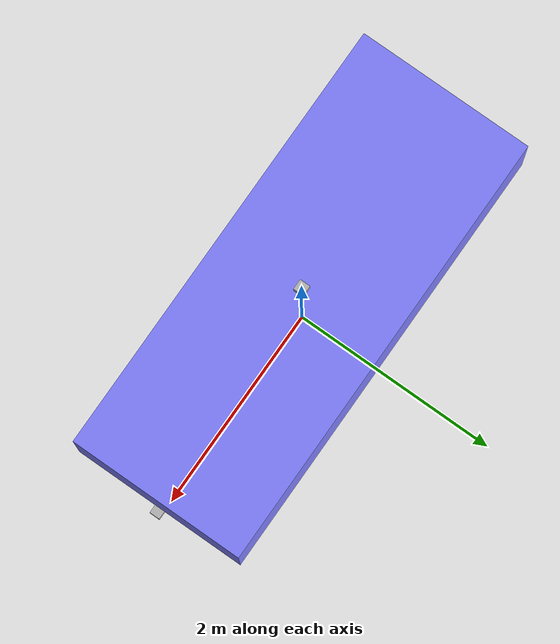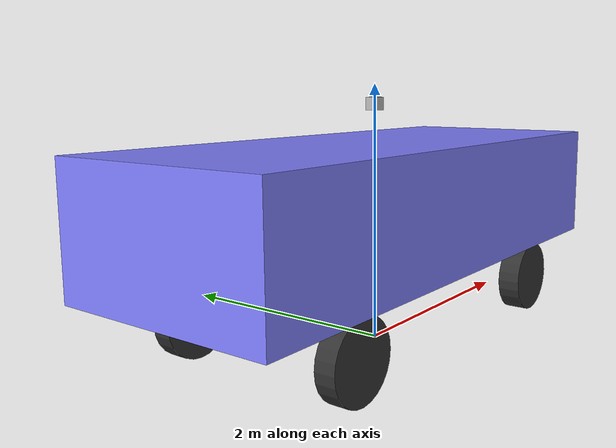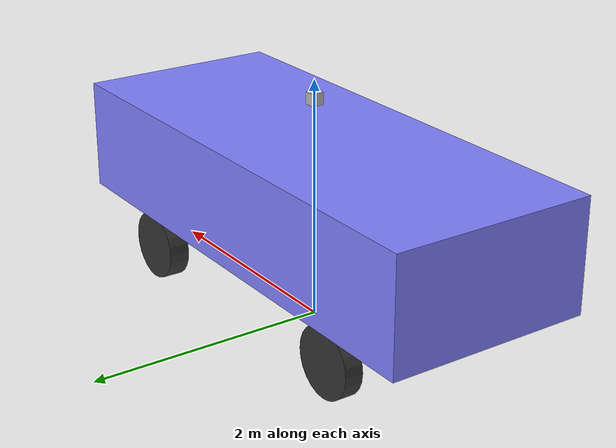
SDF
<?xml version="1.0"?>

<sdf version="1.9">

    <model name='car'>
        <pose>0 0 1.1 0 -0 0</pose>

        <link name='base_footprint'>
            <pose>0 0 0 0 0 0</pose>
        </link>

        <link name='chassis'>
            <pose>0 0 0 0 0 0</pose>
            <inertial>
                <mass>1.14395</mass>
                <inertia>
                    <ixx>0.126164</ixx>
                    <ixy>0</ixy>
                    <ixz>0</ixz>
                    <iyy>0.416519</iyy>
                    <iyz>0</iyz>
                    <izz>0.481014</izz>
                </inertia>
            </inertial>
            <visual name='visual'>
                <geometry>
                    <box>
                        <size> 4.26 1.7 0.93</size>
                    </box>
                </geometry>
                <material>
                    <ambient>0.5 0.5 1.0 1</ambient>
                    <diffuse>0.5 0.5 1.0 1</diffuse>
                    <specular>0.0 0.0 1.0 1</specular>
                </material>
            </visual>
            <collision name='collision'>
                <geometry>
                    <box>
                        <size>4.26 1.7 0.93</size>
                    </box>
                </geometry>
            </collision>
        </link>

        <link name="front_camera_link">
            <pose>2.16 0 -0.5 0 0 0</pose>
            <inertial>
                <mass>0.1</mass>
                <inertia>
                    <ixx>0.000166667</ixx>
                    <iyy>0.000166667</iyy>
                    <izz>0.000166667</izz>
                </inertia>
            </inertial>
            <collision name="collision">
                <geometry>
                    <box>
                        <size>0.1 0.1 0.1</size>
                    </box>
                </geometry>
            </collision>
            <visual name="visual">
                <geometry>
                    <box>
                        <size>0.1 0.1 0.1</size>
                    </box>
                </geometry>
            </visual>
            <sensor name="camera" type="camera">
                <topic>/front_camera/image</topic>
                <camera>
                    <horizontal_fov>1.396</horizontal_fov>
                    <image>
                        <width>640</width>
                        <height>480</height>
                    </image>
                    <clip>
                        <near>0.1</near>
                        <far>100</far>
                    </clip>
                </camera>
                <always_on>1</always_on>
                <update_rate>30</update_rate>
                <visualize>true</visualize>
            </sensor>

            <sensor name='gpu_lidar' type='gpu_lidar'>"
                    <gz_frame_id>front_camera_link</gz_frame_id>
                    <topic>
                /front_camera</topic>
                    <update_rate>10</update_rate>
                    <ray>
                    <scan>
                        <horizontal>
                            <samples>200</samples>
                            <resolution>1</resolution>
                            <min_angle>-0.7</min_angle>
                            <max_angle>0.7</max_angle>
                        </horizontal>
                        <vertical>
                            <samples>120</samples>
                            <resolution>1</resolution>
                            <min_angle>-0.48</min_angle>
                            <max_angle>0.48</max_angle>
                        </vertical>
                    </scan>
                    <range>
                        <min>0.7</min>
                        <max>32.0</max>
                        <resolution>0.01</resolution>
                    </range>
                </ray>
                    <alwaysOn>
                1</alwaysOn>
                    <visualize>true</visualize>
            </sensor>
        </link>

        <link name="navsat">
            <pose>0 0 0.75 0 0 0</pose>
            <inertial>
                <mass>0.1</mass>
                <inertia>
                    <ixx>0.000166667</ixx>
                    <iyy>0.000166667</iyy>
                    <izz>0.000166667</izz>
                </inertia>
            </inertial>
            <collision name="collision">
                <geometry>
                    <box>
                        <size>0.1 0.1 0.1</size>
                    </box>
                </geometry>
            </collision>
            <visual name="visual">
                <geometry>
                    <box>
                        <size>0.1 0.1 0.1</size>
                    </box>
                </geometry>
            </visual>

            <sensor name="navsat" type="navsat">
                <always_on>1</always_on>
                <update_rate>1</update_rate>
                <topic>navsat</topic>
            </sensor>
            <sensor name="imu_sensor" type="imu">
                <always_on>1</always_on>
                <update_rate>1</update_rate>
                <visualize>true</visualize>
                <topic>imu</topic>
            </sensor>
        </link>

        <link name='front_right_wheel'>
            <pose> 1.238 -0.713 -0.75 -1.5707 0 0</pose>
            <inertial>
                <mass>2</mass>
                <inertia>
                    <ixx>0.145833</ixx>
                    <ixy>0</ixy>
                    <ixz>0</ixz>
                    <iyy>0.145833</iyy>
                    <iyz>0</iyz>
                    <izz>0.125</izz>
                </inertia>
            </inertial>
            <visual name='visual'>
                <geometry>
                    <cylinder>
                        <length>0.175</length>
                        <radius>0.285</radius>
                    </cylinder>
                </geometry>
                <material>
                    <ambient>0.2 0.2 0.2 1</ambient>
                    <diffuse>0.2 0.2 0.2 1</diffuse>
                    <specular>0.2 0.2 0.2 1</specular>
                </material>
            </visual>
            <collision name='collision'>
                <geometry>
                    <cylinder>
                        <length>0.175</length>
                        <radius>0.3</radius>
                    </cylinder>
                </geometry>
                <surface>
                    <friction>
                        <ode>
                            <mu>0.5</mu>
                            <mu2>1.0</mu2>
                            <fdir1>0 0 1</fdir1>
                        </ode>
                        <bullet>
                            <friction>0.5</friction>
                            <friction2>1</friction2>
                            <rolling_friction>0.1</rolling_friction>
                        </bullet>
                    </friction>
                </surface>
            </collision>
        </link>

        <link name='front_left_wheel'>
            <pose> 1.238 0.713 -0.75 -1.5707 0 0</pose>
            <inertial>
                <mass>2</mass>
                <inertia>
                    <ixx>0.145833</ixx>
                    <ixy>0</ixy>
                    <ixz>0</ixz>
                    <iyy>0.145833</iyy>
                    <iyz>0</iyz>
                    <izz>0.125</izz>
                </inertia>
            </inertial>
            <visual name='visual'>
                <geometry>
                    <cylinder>
                        <length>0.175</length>
                        <radius>0.285</radius>
                    </cylinder>
                </geometry>
                <material>
                    <ambient>0.2 0.2 0.2 1</ambient>
                    <diffuse>0.2 0.2 0.2 1</diffuse>
                    <specular>0.2 0.2 0.2 1</specular>
                </material>
            </visual>
            <collision name='collision'>
                <geometry>
                    <cylinder>
                        <length>0.175</length>
                        <radius>0.3</radius>
                    </cylinder>
                </geometry>
                <surface>
                    <friction>
                        <ode>
                            <mu>0.5</mu>
                            <mu2>1.0</mu2>
                            <fdir1>0 0 1</fdir1>
                        </ode>
                        <bullet>
                            <friction>0.5</friction>
                            <friction2>1</friction2>
                            <rolling_friction>0.1</rolling_friction>
                        </bullet>
                    </friction>
                </surface>
            </collision>
        </link>

        <link name="front_left_wheel_steering_link">
            <pose>1.238 0.625 -0.75 0 0 0</pose>
            <inertial>
                <mass>0.5</mass>
                <inertia>
                    <ixx>0.0153</ixx>
                    <iyy>0.025</iyy>
                    <izz>0.0153</izz>
                </inertia>
            </inertial>
            <visual name="steering_link_visual">
                <pose>0 0 0 0 0 0</pose>
                <geometry>
                    <cylinder>
                        <length>0.1</length>
                        <radius>0.03</radius>
                    </cylinder>
                </geometry>
                <material>
                    <ambient>1 1 1</ambient>
                    <diffuse>1 1 1</diffuse>
                </material>
            </visual>
        </link>

        <link name="front_right_wheel_steering_link">
            <pose>1.238 -0.625 -0.75 0 0 0</pose>
            <inertial>
                <mass>0.5</mass>
                <inertia>
                    <ixx>0.0153</ixx>
                    <iyy>0.025</iyy>
                    <izz>0.0153</izz>
                </inertia>
            </inertial>
            <visual name="steering_link_visual">
                <pose>0 0 0 0 0 0</pose>
                <geometry>
                    <cylinder>
                        <length>0.1</length>
                        <radius>0.03</radius>
                    </cylinder>
                </geometry>
                <material>
                    <ambient>1 1 1</ambient>
                    <diffuse>1 1 1</diffuse>
                </material>
            </visual>
        </link>

        <link name='back_left_wheel'>
            <pose> -1.238 0.713 -0.75 -1.5707 0 0</pose>
            <inertial>
                <mass>2</mass>
                <inertia>
                    <ixx>0.145833</ixx>
                    <ixy>0</ixy>
                    <ixz>0</ixz>
                    <iyy>0.145833</iyy>
                    <iyz>0</iyz>
                    <izz>0.125</izz>
                </inertia>
            </inertial>
            <visual name='visual'>
                <geometry>
                    <cylinder>
                        <length>0.15</length>
                        <radius>0.285</radius>
                    </cylinder>
                </geometry>
                <material>
                    <ambient>0.2 0.2 0.2 1</ambient>
                    <diffuse>0.2 0.2 0.2 1</diffuse>
                    <specular>0.2 0.2 0.2 1</specular>
                </material>
            </visual>
            <collision name='collision'>
                <geometry>
                    <cylinder>
                        <length>0.175</length>
                        <radius>0.3</radius>
                    </cylinder>
                </geometry>
                <surface>
                    <friction>
                        <ode>
                            <mu>0.5</mu>
                            <mu2>1.0</mu2>
                            <fdir1>0 0 1</fdir1>
                        </ode>
                        <bullet>
                            <friction>0.5</friction>
                            <friction2>1</friction2>
                            <rolling_friction>0.1</rolling_friction>
                        </bullet>
                    </friction>
                </surface>
            </collision>
        </link>

        <link name='back_right_wheel'>
            <pose> -1.238 -0.713 -0.75 -1.5707 0 0</pose>
            <inertial>
                <mass>2</mass>
                <inertia>
                    <ixx>0.145833</ixx>
                    <ixy>0</ixy>
                    <ixz>0</ixz>
                    <iyy>0.145833</iyy>
                    <iyz>0</iyz>
                    <izz>0.125</izz>
                </inertia>
            </inertial>
            <visual name='visual'>
                <geometry>
                    <cylinder>
                        <length>0.15</length>
                        <radius>0.285</radius>
                    </cylinder>
                </geometry>
                <material>
                    <ambient>0.2 0.2 0.2 1</ambient>
                    <diffuse>0.2 0.2 0.2 1</diffuse>
                    <specular>0.2 0.2 0.2 1</specular>
                </material>
            </visual>
            <collision name='collision'>
                <geometry>
                    <cylinder>
                        <length>0.175</length>
                        <radius>0.3</radius>
                    </cylinder>
                </geometry>
                <surface>
                    <friction>
                        <ode>
                            <mu>0.5</mu>
                            <mu2>1.0</mu2>
                            <fdir1>0 0 1</fdir1>
                        </ode>
                        <bullet>
                            <friction>0.5</friction>
                            <friction2>1</friction2>
                            <rolling_friction>0.1</rolling_friction>
                        </bullet>
                    </friction>
                </surface>
            </collision>
        </link>

        <joint name='base_footprint_joint' type='fixed'>
            <parent>base_footprint</parent>
            <child>chassis</child>
        </joint>

        <joint name='front_left_wheel_joint' type='revolute'>
            <parent>front_left_wheel_steering_link</parent>
            <child>front_left_wheel</child>
            <axis>
                <xyz>0 0 1</xyz>
                <limit>
                    <lower>-1.79769e+308</lower>
                    <upper>1.79769e+308</upper>
                </limit>
            </axis>
        </joint>

        <joint name='back_left_wheel_joint' type='revolute'>
            <parent>chassis</parent>
            <child>back_left_wheel</child>
            <axis>
                <xyz>0 0 1</xyz>
                <limit>
                    <lower>-1.79769e+308</lower>
                    <upper>1.79769e+308</upper>
                </limit>
            </axis>
        </joint>

        <joint name='front_right_wheel_joint' type='revolute'>
            <parent>front_right_wheel_steering_link</parent>
            <child>front_right_wheel</child>
            <axis>
                <xyz>0 0 1</xyz>
                <limit>
                    <lower>-1.79769e+308</lower>
                    <upper>1.79769e+308</upper>
                </limit>
            </axis>
        </joint>

        <joint name='back_right_wheel_joint' type='revolute'>
            <parent>chassis</parent>
            <child>back_right_wheel</child>
            <axis>
                <xyz>0 0 1</xyz>
                <limit>
                    <lower>-1.79769e+308</lower>
                    <upper>1.79769e+308</upper>
                </limit>
            </axis>
        </joint>

        <joint name="front_left_wheel_steering_joint" type="revolute">
            <child>front_left_wheel_steering_link</child>
            <parent>chassis</parent>
            <axis>
                <xyz>0 0 1</xyz>
                <limit>
                    <lower>-0.6</lower>
                    <upper>+0.6</upper>
                    <velocity>1.0</velocity>
                    <effort>25</effort>
                </limit>
            </axis>
        </joint>

        <joint name="front_right_wheel_steering_joint" type="revolute">
            <parent>chassis</parent>
            <child>front_right_wheel_steering_link</child>
            <axis>
                <xyz>0 0 1</xyz>
                <limit>
                    <lower>-0.6</lower>
                    <upper>+0.6</upper>
                    <velocity>1.0</velocity>
                    <effort>25</effort>
                </limit>
            </axis>
        </joint>

        <joint name='navsat_joint' type='fixed'>
            <parent>chassis</parent>
            <child>navsat</child>
        </joint>

        <joint name='camera_joint' type='fixed'>
            <parent>chassis</parent>
            <child>front_camera_link</child>
        </joint>

        <plugin filename="ignition-gazebo-ackermann-steering-system"
            name="ignition::gazebo::systems::AckermannSteering">
            <left_joint>front_left_wheel_joint</left_joint>
            <left_joint>back_left_wheel_joint</left_joint>
            <right_joint>front_right_wheel_joint</right_joint>
            <right_joint>back_right_wheel_joint</right_joint>
            <left_steering_joint>front_left_wheel_steering_joint</left_steering_joint>
            <right_steering_joint>front_right_wheel_steering_joint</right_steering_joint>
            <kingpin_width>1.0</kingpin_width>
            <steering_limit>0.715</steering_limit>
            <wheel_base>2.476</wheel_base>
            <wheel_separation>1.426</wheel_separation>
            <wheel_radius>0.285</wheel_radius>
            <odom_publish_rate>50.0</odom_publish_rate>
            <topic>/model/car/cmd_vel</topic>
        </plugin>

        <plugin filename="ignition-gazebo-odometry-publisher-system"
            name="ignition::gazebo::systems::OdometryPublisher">
            <odom_frame>odom</odom_frame>
            <robot_base_frame>chassis</robot_base_frame>
            <odom_publish_frequency>50</odom_publish_frequency>
            <topic>/odometry</topic>
            <dimensions>2</dimensions>
            <child_frame_id>chassis</child_frame_id>
        </plugin>

        <plugin filename="gz-sim-joint-state-publisher-system"
            name="ignition::gazebo::systems::JointStatePublisher">
            <joint_name>back_right_wheel_joint</joint_name>
            <joint_name>back_left_wheel_joint</joint_name>
            <joint_name>front_right_wheel_joint</joint_name>
            <joint_name>front_left_wheel_joint</joint_name>
            <joint_name>front_right_wheel_steering_joint</joint_name>
            <joint_name>front_left_wheel_steering_joint</joint_name>
            <topic>/joint_states</topic>
            <rate>50</rate>
        </plugin>

        <plugin
            filename="gz-sim-pose-publisher-system"
            name="ignition::gazebo::systems::PosePublisher">
            <publish_link_pose>true</publish_link_pose>
            <publish_sensor_pose>true</publish_sensor_pose>
        </plugin>

    </model>

</sdf>
